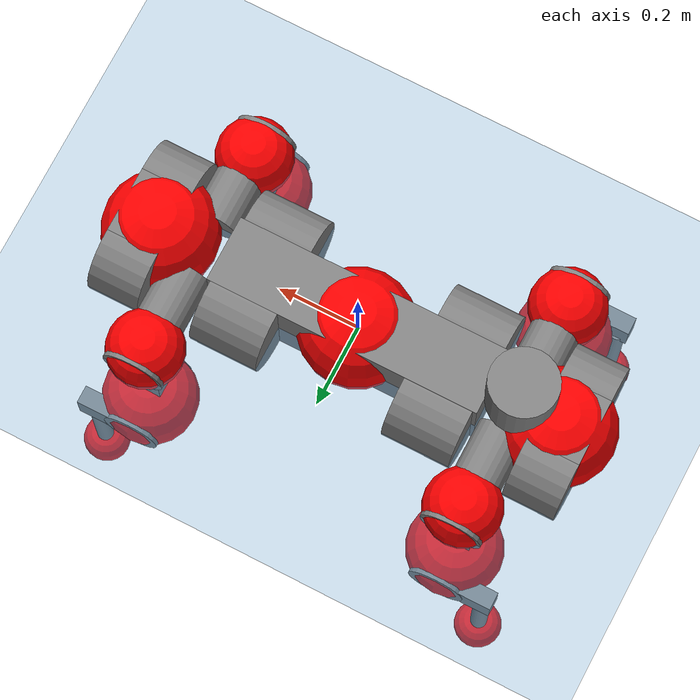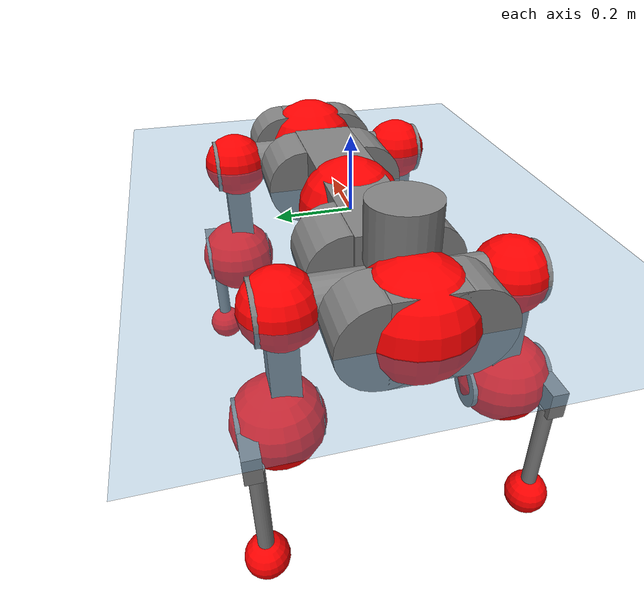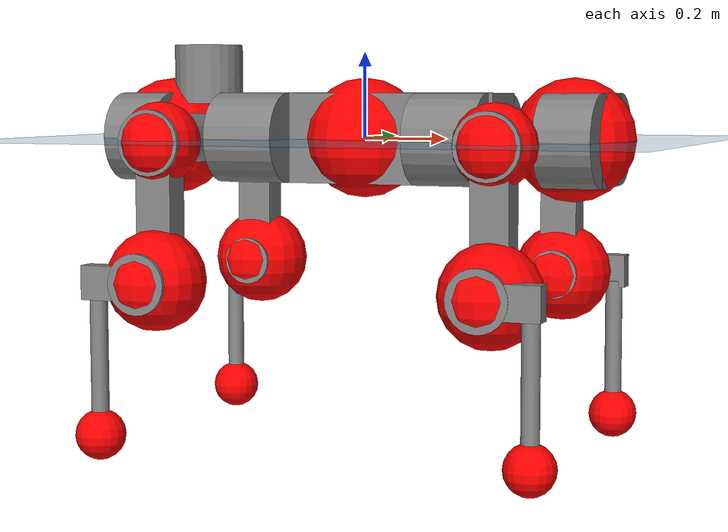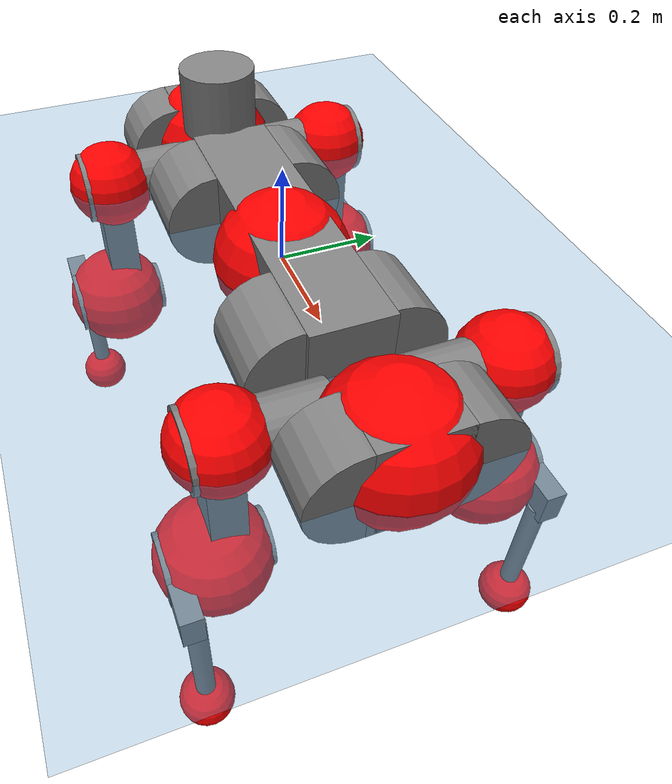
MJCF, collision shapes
<mujoco model="anymal_c">
  <compiler angle="radian" assetdir="assets" balanceinertia="true" inertiafromgeom="false"/>

  <option timestep="0.005" density="1.2" viscosity="2e-05"/>

  <size nkey="1"/>

  <visual>
    <quality shadowsize="8192"/>
    <map shadowclip="0.5"/>
  </visual>

  <default>
    <default class="/">
      <material specular="0" shininess="0.25"/>
      <geom contype="0" conaffinity="0" group="1" solref="-1000 -80"/>
      <site size="0.01 0.005 0.005" group="5"/>
      <general forcelimited="true" forcerange="-80 80" biastype="affine" gainprm="80" biasprm="0 -80 -2"/>
      <default class="anymal_c">
        <joint armature="0.01" damping="0.01" frictionloss="0.1"/>
        <default class="visual">
          <geom type="mesh" group="2"/>
          <default class="visual_zflip"/>
        </default>
        <default class="collision">
          <geom type="cylinder" group="3"/>
          <default class="foot">
            <geom size="0.03 0 0" type="sphere" condim="6" priority="1" friction="0.8 0.02 0.01" solimp="0.015 1 0.03"/>
          </default>
        </default>
      </default>
      <default class="reward_collision_sphere">
        <geom group="5" rgba="1 0 0 1"/>
      </default>
    </default>
  </default>

  <asset>
    <texture type="skybox" colorspace="auto" name="//unnamed_texture_0" builtin="gradient" rgb1="0.95 0.95 0.95" rgb2="0.95 0.95 0.95" width="100" height="600"/>
    <texture type="2d" colorspace="auto" name="texplane" builtin="checker" rgb1="0.345 0.575 0.748" rgb2="0.345 0.575 0.748" markrgb="1 1 1" width="512" height="512"/>
    <texture type="2d" colorspace="linear" name="base" file="base.png"/>
    <texture type="2d" colorspace="linear" name="top_shell" file="top_shell.png"/>
    <texture type="2d" colorspace="linear" name="bottom_shell" file="bottom_shell.png"/>
    <texture type="2d" colorspace="linear" name="remote" file="remote.png"/>
    <texture type="2d" colorspace="linear" name="hatch" file="hatch.png"/>
    <texture type="2d" colorspace="linear" name="handle" file="handle.png"/>
    <texture type="2d" colorspace="linear" name="face" file="face.png"/>
    <texture type="2d" colorspace="linear" name="battery" file="battery.png"/>
    <texture type="2d" colorspace="linear" name="lidar_cage" file="lidar_cage.png"/>
    <texture type="2d" colorspace="linear" name="depth_camera" file="depth_camera.png"/>
    <texture type="2d" colorspace="linear" name="wide_angle_camera" file="wide_angle_camera.png"/>
    <texture type="2d" colorspace="linear" name="lidar" file="lidar.png"/>
    <texture type="2d" colorspace="linear" name="drive" file="drive.png"/>
    <texture type="2d" colorspace="linear" name="hip_l" file="hip_l.png"/>
    <texture type="2d" colorspace="linear" name="shank_l" file="shank_l.png"/>
    <texture type="2d" colorspace="linear" name="foot" file="foot.png"/>
    <texture type="2d" colorspace="linear" name="thigh" file="thigh.png"/>
    <texture type="2d" colorspace="linear" name="shank_r" file="shank_r.png"/>
    <texture type="2d" colorspace="linear" name="hip_r" file="hip_r.png"/>
    <material name="MatPlane" class="/" texture="texplane" texuniform="true" texrepeat="2 2" specular="0.9" shininess="0.5"/>
    <material name="black_plastic" class="/" rgba="0.007 0.007 0.007 1"/>
    <material name="green" class="/" rgba="0.052 0.178 0.033 1"/>
    <material name="red" class="/" rgba="0.178 0.006 0.005 1"/>
    <material name="yellow" class="/" rgba="0.178 0.119 0.006 1"/>
    <material name="lwl" class="/" rgba="0.8 0.8 0.8 1"/>
    <material name="base" class="/" texture="base"/>
    <material name="top_shell" class="/" texture="top_shell"/>
    <material name="bottom_shell" class="/" texture="bottom_shell"/>
    <material name="hip_l" class="/" texture="hip_l"/>
    <material name="thigh" class="/" texture="thigh"/>
    <material name="shank_l" class="/" texture="shank_l"/>
    <material name="foot" class="/" texture="foot"/>
    <material name="hip_r" class="/" texture="hip_r"/>
    <material name="shank" class="/" texture="shank_r"/>
    <material name="hatch" class="/" texture="hatch"/>
    <material name="remote" class="/" texture="remote"/>
    <material name="handle" class="/" texture="handle"/>
    <material name="face" class="/" texture="face"/>
    <material name="depth_camera" class="/" texture="depth_camera"/>
    <material name="wide_angle_camera" class="/" texture="wide_angle_camera"/>
    <material name="battery" class="/" texture="battery"/>
    <material name="lidar_cage" class="/" texture="lidar_cage"/>
    <material name="lidar" class="/" texture="lidar"/>
    <material name="drive" class="/" texture="drive"/>
    <mesh name="base_0" class="/" file="base_0.obj"/>
    <mesh name="base_1" class="/" file="base_1.obj"/>
    <mesh name="base_2" class="/" file="base_2.obj"/>
    <mesh name="base_3" class="/" file="base_3.obj"/>
    <mesh name="base_4" class="/" file="base_4.obj"/>
    <mesh name="base_5" class="/" file="base_5.obj"/>
    <mesh name="top_shell" class="/" file="top_shell.obj"/>
    <mesh name="bottom_shell" class="/" file="bottom_shell.obj"/>
    <mesh name="remote" class="/" file="remote.obj"/>
    <mesh name="handle" class="/" file="handle.obj"/>
    <mesh name="face" class="/" file="face.obj"/>
    <mesh name="wide_angle_camera" class="/" file="wide_angle_camera.obj"/>
    <mesh name="depth_camera" class="/" file="depth_camera.obj"/>
    <mesh name="battery" class="/" file="battery.obj"/>
    <mesh name="lidar_cage" class="/" file="lidar_cage.obj"/>
    <mesh name="lidar" class="/" file="lidar.obj"/>
    <mesh name="drive" class="/" file="drive.obj"/>
    <mesh name="hip_l" class="/" file="hip_l.obj"/>
    <mesh name="thigh" class="/" file="thigh.obj"/>
    <mesh name="shank_l" class="/" file="shank_l.obj"/>
    <mesh name="foot" class="/" file="foot.obj"/>
    <mesh name="hip_r" class="/" file="hip_r.obj"/>
    <mesh name="hatch" class="/" file="hatch.obj"/>
    <mesh name="shank_r" class="/" file="shank_r.obj"/>
  </asset>

  <worldbody>
    <geom name="floor" class="/" size="100 100 0.125" type="plane" group="0" material="MatPlane"/>
    <light name="toplight_shadow" class="/" pos="0 0 5" dir="0.0990148 0.0990148 -0.990148" type="directional" ambient="0.04 0.04 0.04" diffuse="0.55 0.55 0.55" specular="0.12 0.12 0.12"/>
    <light name="toplight_fill" class="/" pos="0 0 5" dir="0.0990148 0.0990148 -0.990148" type="directional" castshadow="false" ambient="0.04 0.04 0.04" diffuse="0.3 0.3 0.3" specular="0.08 0.08 0.08"/>
    <body name="trunk" childclass="anymal_c" pos="0.000654995 0.000674344 0.000990969" quat="1 -2.24112e-05 -2.50254e-05 -4.49728e-05">
      <inertial pos="0.00506941 0.00130734 0.0519573" quat="0.495597 0.49103 0.519908 0.492918" mass="30.2803" diaginertia="1.09579 1.83496 0.373435"/>
      <joint name="//unnamed_joint_0" type="free" armature="0" damping="0" frictionloss="0"/>
      <geom name="//unnamed_geom_1" class="visual" material="green" mesh="base_0"/>
      <geom name="//unnamed_geom_2" class="visual" material="yellow" mesh="base_1"/>
      <geom name="//unnamed_geom_3" class="visual" material="red" mesh="base_2"/>
      <geom name="//unnamed_geom_4" class="visual" material="black_plastic" mesh="base_3"/>
      <geom name="//unnamed_geom_5" class="visual" material="lwl" mesh="base_4"/>
      <geom name="//unnamed_geom_6" class="visual" material="base" mesh="base_5"/>
      <geom name="trunk_1" class="collision" size="0.337148 0.0813806 0.104632" type="box"/>
      <geom name="trunk_2" class="collision" size="0.104632 0.084287" pos="0.243048 0.0879985 0" quat="0.707107 0 0.707107 0"/>
      <geom name="trunk_3" class="collision" size="0.104632 0.084287" pos="-0.243048 0.0879985 0" quat="0.707107 0 0.707107 0"/>
      <geom name="trunk_4" class="collision" size="0.104632 0.084287" pos="0.243048 -0.0879985 0" quat="0.707107 0 0.707107 0"/>
      <geom name="trunk_5" class="collision" size="0.104632 0.084287" pos="-0.243048 -0.0879985 0" quat="0.707107 0 0.707107 0"/>
      <geom name="//unnamed_geom_12" class="visual" material="top_shell" mesh="top_shell"/>
      <geom name="//unnamed_geom_13" class="visual" material="bottom_shell" mesh="bottom_shell"/>
      <geom name="//unnamed_geom_14" class="visual" material="remote" mesh="remote"/>
      <geom name="//unnamed_geom_15" class="visual" material="handle" mesh="handle"/>
      <geom name="//unnamed_geom_16" class="visual" pos="0.463189 0 0" quat="1 0 0 0" material="face" mesh="face"/>
      <geom name="trunk_6" class="collision" size="0.0639419 0.0813806 0.104632" pos="0.524649 0 0" type="box"/>
      <geom name="//unnamed_geom_18" class="collision" size="0.104632 0.0639419" pos="0.524649 0.0879985 0" quat="0.707107 0 0.707107 0"/>
      <geom name="//unnamed_geom_19" class="collision" size="0.104632 0.0639419" pos="0.524649 -0.0879985 0" quat="0.707107 0 0.707107 0"/>
      <geom name="//unnamed_geom_20" class="visual" pos="0.515877 0 -0.0324713" quat="0.965926 0 0.258819 0" material="depth_camera" mesh="depth_camera"/>
      <geom name="//unnamed_geom_21" class="visual" pos="0.573259 0 0.0166639" material="wide_angle_camera" mesh="wide_angle_camera"/>
      <geom name="//unnamed_geom_22" class="visual_zflip" pos="-0.463189 0 0" quat="0 0 0 1" material="face" mesh="face"/>
      <geom name="trunk_7" class="collision" size="0.0639419 0.0813806 0.104632" pos="-0.524649 0 0" quat="0 0 0 1" type="box"/>
      <geom name="//unnamed_geom_24" class="collision" size="0.104632 0.0639419" pos="-0.524649 -0.0879985 0" quat="0 -0.707107 0 0.707107"/>
      <geom name="//unnamed_geom_25" class="collision" size="0.104632 0.0639419" pos="-0.524649 0.0879985 0" quat="0 -0.707107 0 0.707107"/>
      <geom name="//unnamed_geom_26" class="visual" pos="-0.515877 0 -0.0324713" quat="0 -0.258819 0 0.965926" material="depth_camera" mesh="depth_camera"/>
      <geom name="//unnamed_geom_27" class="visual_zflip" pos="-0.573259 0 0.0166639" quat="0 0 0 1" material="wide_angle_camera" mesh="wide_angle_camera"/>
      <geom name="//unnamed_geom_28" class="visual" material="battery" mesh="battery"/>
      <geom name="//unnamed_geom_29" class="visual" pos="0 0.097952 0.0323699" quat="0.683013 -0.183013 0.183013 0.683013" material="depth_camera" mesh="depth_camera"/>
      <geom name="//unnamed_geom_30" class="visual" pos="0 -0.097952 0.0323699" quat="0.683013 0.183013 0.183013 -0.683013" material="depth_camera" mesh="depth_camera"/>
      <geom name="//unnamed_geom_31" class="visual" pos="-0.406757 0 0.0818167" quat="1 0 0 0" material="lidar_cage" mesh="lidar_cage"/>
      <geom name="trunk_8" class="collision" size="0.0813806 0.0697548" pos="-0.406757 0 0.148606"/>
      <geom name="//unnamed_geom_33" class="visual" pos="-0.406757 5.4868e-05 0.15829" quat="0.707107 0 0 -0.707107" material="lidar" mesh="lidar"/>
      <geom name="//unnamed_geom_34" class="visual" pos="0.335127 0.13069 2.48348e-09" quat="0.258819 0.965926 0 0" material="drive" mesh="drive"/>
      <geom name="//unnamed_geom_35" class="visual" pos="0.335127 -0.13069 -2.48348e-09" quat="0.258819 -0.965926 0 0" material="drive" mesh="drive"/>
      <geom name="//unnamed_geom_36" class="visual" pos="-0.335127 0.13069 -2.48348e-09" quat="0 0 0.965926 -0.258819" material="drive" mesh="drive"/>
      <geom name="//unnamed_geom_37" class="visual" pos="-0.335127 -0.13069 2.48348e-09" quat="0 0 -0.965926 -0.258819" material="drive" mesh="drive"/>
      <geom name="//unnamed_geom_38" class="visual" pos="0.129626 0 0.0812602" quat="1 0 0 0" material="hatch" mesh="hatch"/>
      <geom name="//unnamed_geom_39" class="reward_collision_sphere" size="0.13951"/>
      <geom name="//unnamed_geom_40" class="reward_collision_sphere" size="0.13951" pos="0.502859 0 0"/>
      <geom name="//unnamed_geom_41" class="reward_collision_sphere" size="0.13951" pos="-0.502859 0 0"/>
      <site name="imu" pos="0.275975 0.0168622 0.0548243" size="0.0116258"/>
      <camera name="track" pos="0 -2.51424 0" quat="0.707107 0.707107 0 0" mode="trackcom"/>
      <camera name="ego_camera" pos="0.502859 0 -0.0445261" quat="-0.5 -0.5 0.5 0.5"/>
      <body name="LF_HIP" pos="0.335816 0.12644 -0.00244129" quat="0.258821 0.965925 -1.31324e-05 0.000481411">
        <inertial pos="0.0616201 -0.0193641 -0.00735514" quat="-0.130362 0.709035 -0.129576 0.680797" mass="4.43041" diaginertia="0.0102211 0.0159817 0.00554566"/>
        <joint name="LF_HAA" pos="0 0 0" axis="0.999999 -0.000413533 0.00115552" range="-0.811614 0.520651" armature="0.0115163" damping="0.0112059" frictionloss="0.118593"/>
        <geom name="//unnamed_geom_42" class="visual" pos="0 0.000146092 -2.39955e-05" quat="0.258819 -0.965926 0 0" material="hip_l" mesh="hip_l"/>
        <geom name="//unnamed_geom_43" class="visual" pos="0.0669361 -0.082895 -0.0467945" quat="0.183013 -0.683013 0.683013 0.183013" material="drive" mesh="drive"/>
        <geom name="//unnamed_geom_44" class="collision" size="0.058129 0.0813806" pos="0.0669361 -0.0150349 -0.00768632" quat="-0.353553 -0.612372 0.612372 -0.353553"/>
        <body name="LF_THIGH" pos="0.0668203 -0.0956298 -0.0484738" quat="0.183009 -0.683006 0.68302 0.183015">
          <inertial pos="0.0345234 0.00106033 -0.271598" quat="0.993837 -0.0116338 -0.0769848 0.0789013" mass="4.82483" diaginertia="0.0534547 0.0942984 0.00692091"/>
          <joint name="LF_HFE" pos="0 0 0" axis="0.99999 0.00443545 0.000849555" stiffness="0.0120226" range="-3.10539 3.08286" armature="0.0109369" damping="0.0247156" frictionloss="0.13035"/>
          <geom name="//unnamed_geom_45" class="visual" pos="-0.00277865 -4.3785e-06 0" quat="0.707107 0 0 -0.707107" material="thigh" mesh="thigh"/>
          <geom name="//unnamed_geom_46" class="collision" size="0.0755677 0.0465032" pos="0.0446985 0 0" quat="0.5 0.5 -0.5 -0.5"/>
          <geom name="//unnamed_geom_47" class="collision" size="0.0435967 0.0348774 0.164289" pos="0.0335239 0 -0.157304" quat="0.707107 0 0 -0.707107" type="box"/>
          <geom name="//unnamed_geom_48" class="visual" pos="0.112082 0 -0.317249" quat="1 0 0 0" material="drive" mesh="drive"/>
          <geom name="//unnamed_geom_49" class="collision" size="0.058129 0.0813806" pos="0.0338591 0 -0.317249" quat="0.707107 0 0.707107 0"/>
          <geom name="//unnamed_geom_50" class="reward_collision_sphere" size="0.0930064" pos="0.0279366 0 0"/>
          <body name="LF_SHANK" pos="0.109321 0.00270909 -0.319898" quat="1 1.5499e-05 0.000175039 0.000765122">
            <inertial pos="0.00671849 -0.0771596 -0.0859024" quat="0.992871 -0.116801 0.00124253 -0.023731" mass="0.898065" diaginertia="0.0176587 0.0275834 0.00197855"/>
            <joint name="LF_KFE" pos="0 0 0" axis="1 0.000102407 -0.000414625" range="-3.06595 3.12158" armature="0.0112253" damping="0.00776025" frictionloss="0.115817"/>
            <geom name="//unnamed_geom_51" class="visual" pos="-0.000906057 -0.00483114 0" quat="0.707107 0 0 -0.707107" material="shank_l" mesh="shank_l"/>
            <geom name="LF_kfe_act" class="collision" size="0.0697548 0.0232516" pos="0.0223493 0 0" quat="0.5 0.5 -0.5 -0.5"/>
            <geom name="//unnamed_geom_53" class="collision" size="0.0668472 0.0392371 0.022089" pos="0.0223493 -0.0722832 0" quat="0.5 0.5 -0.5 -0.5" type="box"/>
            <geom name="//unnamed_geom_54" class="visual" pos="0.0145831 -0.112121 -0.376212" quat="0.382683 0 0 -0.92388" material="foot" mesh="foot"/>
            <geom name="LF_calf" class="collision" size="0.0203451 0.164217" pos="0.0145829 -0.110564 -0.188106" quat="0.707107 0 0 -0.707107"/>
            <geom name="LF_foot" class="foot" size="0.0307277" pos="0.0145829 -0.110564 -0.351166" quat="0.707107 0 0 -0.707107"/>
            <geom name="//unnamed_geom_57" class="reward_collision_sphere" size="0.116258" pos="-0.0558732 0 0"/>
            <geom name="//unnamed_geom_58" class="reward_collision_sphere" size="0.058129" pos="0.0145829 -0.110564 -0.351166"/>
            <site name="LF_foot" class="foot" pos="0.0145829 -0.110564 -0.351166" quat="0.707107 0 0 -0.707107" size="0.0116258"/>
          </body>
        </body>
      </body>
      <body name="RF_HIP" pos="0.335372 -0.131679 -0.0024076" quat="0.259037 -0.965867 0.000336874 0.000115188">
        <inertial pos="0.0609939 0.0221818 -0.00670807" quat="0.135762 0.6797 0.129059 0.709168" mass="4.52112" diaginertia="0.00998042 0.0165167 0.00561305"/>
        <joint name="RF_HAA" pos="0 0 0" axis="0.999994 -0.000837718 -0.00325047" range="-0.486114 0.731706" armature="0.0131016" damping="0.0247494" frictionloss="0.130693"/>
        <geom name="//unnamed_geom_59" class="visual" pos="0 -0.000146091 -2.39954e-05" quat="0.258819 0.965926 0 0" material="hip_r" mesh="hip_r"/>
        <geom name="//unnamed_geom_60" class="visual" pos="0.0669361 0.082895 -0.0467945" quat="0.183013 0.683013 0.683013 -0.183013" material="drive" mesh="drive"/>
        <geom name="//unnamed_geom_61" class="collision" size="0.058129 0.0813806" pos="0.0669361 0.0150349 -0.00768632" quat="-0.353553 0.612372 0.612372 0.353553"/>
        <body name="RF_THIGH" pos="0.064192 0.0866489 -0.0451733" quat="0.182269 0.683192 0.683266 -0.182139">
          <inertial pos="0.0327124 0.00420418 -0.273496" quat="0.992461 -0.0095404 -0.0821629 0.0904391" mass="4.74632" diaginertia="0.0523434 0.0925623 0.00682459"/>
          <joint name="RF_HFE" pos="0 0 0" axis="1 -0.000306379 4.85552e-05" range="-3.08007 3.14094" armature="0.0123787" damping="0.0251983" frictionloss="0.116632"/>
          <geom name="//unnamed_geom_62" class="visual" pos="-0.00277865 -4.3785e-06 0" quat="0.707107 0 0 -0.707107" material="thigh" mesh="thigh"/>
          <geom name="//unnamed_geom_63" class="collision" size="0.0755677 0.0465032" pos="0.0446985 0 0" quat="0.5 0.5 0.5 0.5"/>
          <geom name="//unnamed_geom_64" class="collision" size="0.0435967 0.0348774 0.164289" pos="0.0335239 0 -0.157304" quat="0.707107 0 0 0.707107" type="box"/>
          <geom name="//unnamed_geom_65" class="visual" pos="0.112082 0 -0.317249" quat="1 0 0 0" material="drive" mesh="drive"/>
          <geom name="//unnamed_geom_66" class="collision" size="0.058129 0.0813806" pos="0.0338591 0 -0.317249" quat="0.707107 0 0.707107 0"/>
          <geom name="//unnamed_geom_67" class="reward_collision_sphere" size="0.0930064" pos="0.0279366 0 0"/>
          <body name="RF_SHANK" pos="0.11497 0.00221003 -0.31807" quat="1 -1.56812e-05 -0.000740186 0.000476306">
            <inertial pos="0.00865565 0.0766004 -0.0894589" quat="0.992657 0.118292 0.00270872 0.0251434" mass="0.933483" diaginertia="0.0182198 0.0288697 0.00197034"/>
            <joint name="RF_KFE" pos="0 0 0" axis="0.99983 0.000157657 -0.0184443" range="-3.08504 3.11917" armature="0.0100513" damping="0" frictionloss="0.125926"/>
            <geom name="//unnamed_geom_68" class="visual" pos="-0.000906052 0.00483113 0" quat="0.707107 0 0 0.707107" material="shank" mesh="shank_r"/>
            <geom name="RF_kfe_act" class="collision" size="0.0697548 0.0232516" pos="0.0223493 0 0" quat="0.5 0.5 0.5 0.5"/>
            <geom name="//unnamed_geom_70" class="collision" size="0.0668472 0.0392371 0.022089" pos="0.0223493 0.0722832 0" quat="0.5 0.5 0.5 0.5" type="box"/>
            <geom name="//unnamed_geom_71" class="visual" pos="0.0145827 0.112121 -0.376212" quat="0.382683 0 0 0.92388" material="foot" mesh="foot"/>
            <geom name="RF_calf" class="collision" size="0.0203451 0.164217" pos="0.0145829 0.110564 -0.188106" quat="0.707107 0 0 0.707107"/>
            <geom name="RF_foot" class="foot" size="0.0287004" pos="0.0145829 0.110564 -0.351166" quat="0.707107 0 0 0.707107"/>
            <geom name="//unnamed_geom_74" class="reward_collision_sphere" size="0.116258" pos="-0.0558732 0 0"/>
            <geom name="//unnamed_geom_75" class="reward_collision_sphere" size="0.058129" pos="0.0145829 0.110564 -0.351166"/>
            <site name="RF_foot" class="foot" pos="0.0145829 0.110564 -0.351166" quat="0.707107 0 0 0.707107" size="0.0116258"/>
          </body>
        </body>
      </body>
      <body name="LH_HIP" pos="-0.332022 0.130541 0.00445543" quat="0.000194144 0.00110991 0.965692 -0.259686">
        <inertial pos="0.0625641 0.0204259 -0.00782744" quat="0.146398 0.67339 0.127745 0.713298" mass="4.63338" diaginertia="0.0104552 0.0158598 0.00583559"/>
        <joint name="LH_HAA" pos="0 0 0" axis="0.999942 0.00410622 0.0099423" range="-0.447239 0.677416" armature="0.0117232" damping="0.0108017" frictionloss="0.129758"/>
        <geom name="//unnamed_geom_76" class="visual" pos="0 -0.000146091 -2.39954e-05" quat="-0.258819 -0.965926 0 0" material="hip_r" mesh="hip_r"/>
        <geom name="//unnamed_geom_77" class="visual" pos="0.0669361 0.082895 -0.0467945" quat="0.183013 0.683013 0.683013 -0.183013" material="drive" mesh="drive"/>
        <geom name="//unnamed_geom_78" class="collision" size="0.058129 0.0813806" pos="0.0669361 0.0150349 -0.00768632" quat="-0.353553 0.612372 0.612372 0.353553"/>
        <body name="LH_THIGH" pos="0.0658838 0.091 -0.0429649" quat="0.181913 0.68381 0.682659 -0.182451">
          <inertial pos="0.0336315 -0.00156037 -0.270197" quat="0.992925 -0.0013679 -0.0766289 0.0907032" mass="4.69112" diaginertia="0.0525347 0.0993189 0.00727245"/>
          <joint name="LH_HFE" pos="0 0 0" axis="0.999998 0.00176498 -0.000441374" range="-3.12715 3.15717" armature="0.0103574" damping="0.0147011" frictionloss="0.109926"/>
          <geom name="//unnamed_geom_79" class="visual" pos="-0.00277865 -4.3785e-06 0" quat="0.707107 0 0 -0.707107" material="thigh" mesh="thigh"/>
          <geom name="//unnamed_geom_80" class="collision" size="0.0755677 0.0465032" pos="0.0446985 0 0" quat="0.5 0.5 -0.5 -0.5"/>
          <geom name="//unnamed_geom_81" class="collision" size="0.0435967 0.0348774 0.164289" pos="0.0335239 0 -0.157304" quat="0.707107 0 0 -0.707107" type="box"/>
          <geom name="//unnamed_geom_82" class="visual" pos="0.112082 0 -0.317249" quat="1 0 0 0" material="drive" mesh="drive"/>
          <geom name="//unnamed_geom_83" class="collision" size="0.058129 0.0813806" pos="0.0338591 0 -0.317249" quat="0.707107 0 0.707107 0"/>
          <geom name="//unnamed_geom_84" class="reward_collision_sphere" size="0.0930064" pos="0.0279366 0 0"/>
          <body name="LH_SHANK" pos="0.111278 0.00457835 -0.314075" quat="0.999999 -0.000954733 -0.000299234 0.0010359">
            <inertial pos="0.0051646 0.077301 -0.0917909" quat="0.992981 0.115504 -0.000296005 0.0254385" mass="0.946778" diaginertia="0.0175051 0.0292748 0.00194291"/>
            <joint name="LH_KFE" pos="0 0 0" axis="0.999999 -0.000361289 -0.00153911" range="-3.22024 3.15022" armature="0.0112605" damping="0.000366783" frictionloss="0.120779"/>
            <geom name="//unnamed_geom_85" class="visual" pos="-0.000906052 0.00483113 0" quat="-0.707107 0 0 -0.707107" material="shank" mesh="shank_r"/>
            <geom name="LH_kfe_act" class="collision" size="0.0697548 0.0232516" pos="0.0223493 0 0" quat="0.5 0.5 -0.5 -0.5"/>
            <geom name="//unnamed_geom_87" class="collision" size="0.0668472 0.0392371 0.022089" pos="0.0223493 0.0722832 0" quat="0.5 0.5 -0.5 -0.5" type="box"/>
            <geom name="//unnamed_geom_88" class="visual" pos="0.0145827 0.112121 -0.376212" quat="-0.382683 0 0 -0.92388" material="foot" mesh="foot"/>
            <geom name="LH_calf" class="collision" size="0.0203451 0.164217" pos="0.0145829 0.110564 -0.188106" quat="0.707107 0 0 -0.707107"/>
            <geom name="LH_foot" class="foot" size="0.0385999" pos="0.0145829 0.110564 -0.351166" quat="0.707107 0 0 -0.707107"/>
            <geom name="//unnamed_geom_91" class="reward_collision_sphere" size="0.116258" pos="-0.0558732 0 0"/>
            <geom name="//unnamed_geom_92" class="reward_collision_sphere" size="0.058129" pos="0.0145829 0.110564 -0.351166"/>
            <site name="LH_foot" class="foot" pos="0.0145829 0.110564 -0.351166" quat="0.707107 0 0 -0.707107" size="0.0116258"/>
          </body>
        </body>
      </body>
      <body name="RH_HIP" pos="-0.332485 -0.134362 -0.0014895" quat="5.13017e-05 9.53847e-05 -0.965745 -0.259494">
        <inertial pos="0.065889 -0.0208627 -0.00984173" quat="-0.115672 0.712725 -0.135368 0.678468" mass="4.43437" diaginertia="0.0103048 0.0161514 0.00551299"/>
        <joint name="RH_HAA" pos="0 0 0" axis="0.999945 0.00513924 0.00912771" stiffness="0.00746801" range="-0.758831 0.544752" armature="0.0113895" damping="0.00256292" frictionloss="0.123816"/>
        <geom name="//unnamed_geom_93" class="visual" pos="0 0.000146092 -2.39955e-05" quat="-0.258819 0.965926 0 0" material="hip_l" mesh="hip_l"/>
        <geom name="//unnamed_geom_94" class="visual" pos="0.0669361 -0.082895 -0.0467945" quat="-0.183013 0.683013 -0.683013 -0.183013" material="drive" mesh="drive"/>
        <geom name="//unnamed_geom_95" class="collision" size="0.058129 0.0813806" pos="0.0669361 -0.0150349 -0.00768632" quat="0.353553 0.612372 -0.612372 0.353553"/>
        <body name="RH_THIGH" pos="0.0664106 -0.0914659 -0.0459947" quat="-0.183394 0.683744 -0.682377 -0.18227">
          <inertial pos="0.0349428 0.00257063 -0.272397" quat="0.994216 0.00105172 -0.0706859 0.0808571" mass="4.76211" diaginertia="0.052609 0.0922707 0.0070621"/>
          <joint name="RH_HFE" pos="0 0 0" axis="0.999912 0.01036 0.00823687" range="-3.09504 3.16848" armature="0.0115585" damping="0.00673419" frictionloss="0.129077"/>
          <geom name="//unnamed_geom_96" class="visual" pos="-0.00277865 -4.3785e-06 0" quat="0.707107 0 0 -0.707107" material="thigh" mesh="thigh"/>
          <geom name="//unnamed_geom_97" class="collision" size="0.0755677 0.0465032" pos="0.0446985 0 0" quat="0.5 0.5 0.5 0.5"/>
          <geom name="//unnamed_geom_98" class="collision" size="0.0435967 0.0348774 0.164289" pos="0.0335239 0 -0.157304" quat="0.707107 0 0 0.707107" type="box"/>
          <geom name="//unnamed_geom_99" class="visual" pos="0.112082 0 -0.317249" quat="1 0 0 0" material="drive" mesh="drive"/>
          <geom name="//unnamed_geom_100" class="collision" size="0.058129 0.0813806" pos="0.0338591 0 -0.317249" quat="0.707107 0 0.707107 0"/>
          <geom name="//unnamed_geom_101" class="reward_collision_sphere" size="0.0930064" pos="0.0279366 0 0"/>
          <body name="RH_SHANK" pos="0.1175 0.00346791 -0.314099" quat="0.999999 -0.000143506 0.00101013 0.00023057">
            <inertial pos="0.00149692 -0.0766567 -0.0924059" quat="0.992238 -0.122263 -0.00976591 -0.0205165" mass="0.909461" diaginertia="0.0169532 0.0277689 0.0019485"/>
            <joint name="RH_KFE" pos="0 0 0" axis="0.999899 -0.00260431 -0.0139589" range="-3.10831 3.08119" armature="0.0131247" damping="0.0104033" frictionloss="0.111211"/>
            <geom name="//unnamed_geom_102" class="visual" pos="-0.000906057 -0.00483114 0" quat="0.707107 0 0 -0.707107" material="shank_l" mesh="shank_l"/>
            <geom name="RH_kfe_act" class="collision" size="0.0697548 0.0232516" pos="0.0223493 0 0" quat="0.5 0.5 0.5 0.5"/>
            <geom name="//unnamed_geom_104" class="collision" size="0.0668472 0.0392371 0.022089" pos="0.0223493 -0.0722832 0" quat="0.5 0.5 0.5 0.5" type="box"/>
            <geom name="//unnamed_geom_105" class="visual" pos="0.0145831 -0.112121 -0.376212" quat="0.382683 0 0 -0.92388" material="foot" mesh="foot"/>
            <geom name="RH_calf" class="collision" size="0.0203451 0.164217" pos="0.0145829 -0.110564 -0.188106" quat="0.707107 0 0 0.707107"/>
            <geom name="RH_foot" class="foot" size="0.0312193" pos="0.0145829 -0.110564 -0.351166" quat="0.707107 0 0 0.707107"/>
            <geom name="//unnamed_geom_108" class="reward_collision_sphere" size="0.116258" pos="-0.0558732 0 0"/>
            <geom name="//unnamed_geom_109" class="reward_collision_sphere" size="0.058129" pos="0.0145829 -0.110564 -0.351166"/>
            <site name="RH_foot" class="foot" pos="0.0145829 -0.110564 -0.351166" quat="0.707107 0 0 0.707107" size="0.0116258"/>
          </body>
        </body>
      </body>
    </body>
  </worldbody>

  <contact>
    <pair class="/" geom1="floor" geom2="LF_foot" name="//unnamed_contact_0"/>
    <pair class="/" geom1="floor" geom2="RF_foot" name="//unnamed_contact_1"/>
    <pair class="/" geom1="floor" geom2="LH_foot" name="//unnamed_contact_2"/>
    <pair class="/" geom1="floor" geom2="RH_foot" name="//unnamed_contact_3"/>
  </contact>

  <actuator>
    <general name="LF_HAA" class="/" joint="LF_HAA" forcerange="-77.1277 77.1277" gainprm="86.7926" biasprm="0 -86.7926 -2.47106"/>
    <general name="LF_HFE" class="/" joint="LF_HFE" forcerange="-91.0144 91.0144" gainprm="86.7926" biasprm="0 -86.7926 -2.47106"/>
    <general name="LF_KFE" class="/" joint="LF_KFE" forcerange="-84.893 84.893" gainprm="86.7926" biasprm="0 -86.7926 -2.47106"/>
    <general name="RF_HAA" class="/" joint="RF_HAA" forcerange="-82.839 82.839" gainprm="86.7926" biasprm="0 -86.7926 -2.47106"/>
    <general name="RF_HFE" class="/" joint="RF_HFE" forcerange="-83.0829 83.0829" gainprm="86.7926" biasprm="0 -86.7926 -2.47106"/>
    <general name="RF_KFE" class="/" joint="RF_KFE" forcerange="-94.7842 94.7842" gainprm="86.7926" biasprm="0 -86.7926 -2.47106"/>
    <general name="LH_HAA" class="/" joint="LH_HAA" forcerange="-86.9682 86.9682" gainprm="86.7926" biasprm="0 -86.7926 -2.47106"/>
    <general name="LH_HFE" class="/" joint="LH_HFE" forcerange="-102.704 102.704" gainprm="86.7926" biasprm="0 -86.7926 -2.47106"/>
    <general name="LH_KFE" class="/" joint="LH_KFE" forcerange="-89.2951 89.2951" gainprm="86.7926" biasprm="0 -86.7926 -2.47106"/>
    <general name="RH_HAA" class="/" joint="RH_HAA" forcerange="-105.753 105.753" gainprm="86.7926" biasprm="0 -86.7926 -2.47106"/>
    <general name="RH_HFE" class="/" joint="RH_HFE" forcerange="-88.2878 88.2878" gainprm="86.7926" biasprm="0 -86.7926 -2.47106"/>
    <general name="RH_KFE" class="/" joint="RH_KFE" forcerange="-93.2245 93.2245" gainprm="86.7926" biasprm="0 -86.7926 -2.47106"/>
  </actuator>

  <sensor>
    <gyro site="imu" name="imu_angular_velocity"/>
    <velocimeter site="imu" name="imu_linear_velocity"/>
    <framelinvel objtype="site" objname="LF_foot" name="LF_foot_global_linear_velocity"/>
    <framelinvel objtype="site" objname="RF_foot" name="RF_foot_global_linear_velocity"/>
    <framelinvel objtype="site" objname="LH_foot" name="LH_foot_global_linear_velocity"/>
    <framelinvel objtype="site" objname="RH_foot" name="RH_foot_global_linear_velocity"/>
  </sensor>

  <keyframe>
    <key name="home" qpos="0 0 0.55 1 0 0 0 0 0.4 -0.8 0 -0.4 0.8 0 -0.4 0.8 0 0.4 -0.8"/>
  </keyframe>
</mujoco>
